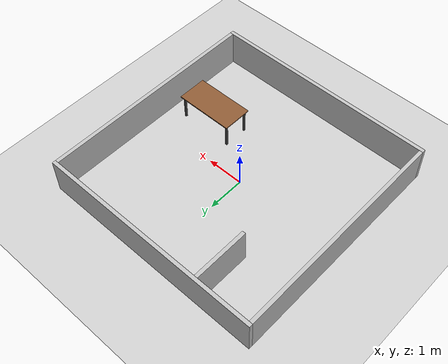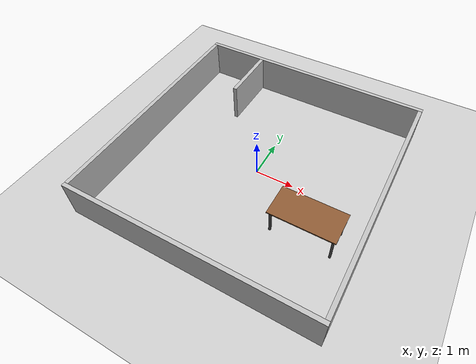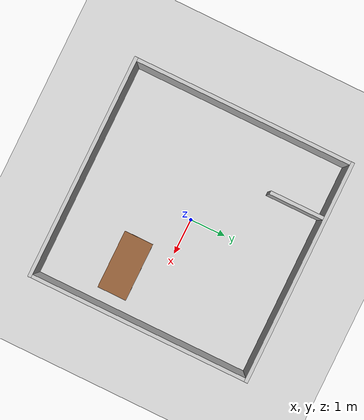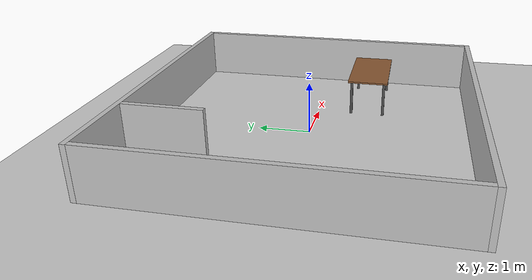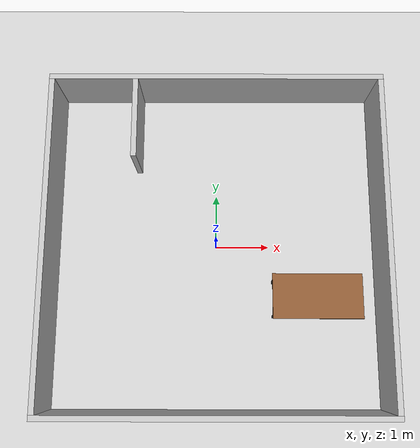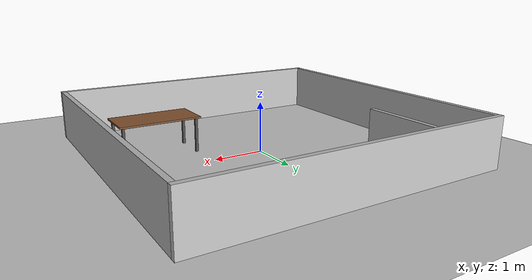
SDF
<sdf version="1.10">
 <world name="robocup_motion">
  <gravity>0 0 -9.81</gravity>
  <physics name="physics" type="ignored">
   <max_step_size>0.001</max_step_size>
   <real_time_factor>1</real_time_factor>
  </physics>
  <plugin filename="gz-sim-physics-system" name="gz::sim::systems::Physics"/>
  <plugin filename="gz-sim-user-commands-system" name="gz::sim::systems::UserCommands"/>
  <plugin filename="gz-sim-scene-broadcaster-system" name="gz::sim::systems::SceneBroadcaster"/>
  <plugin filename="gz-sim-sensors-system" name="gz::sim::systems::Sensors">
   <render_engine>ogre2</render_engine>
  </plugin>
  <model name="ground">
   <static>true</static>
   <link name="ground">
    <collision name="ground_collision">
     <geometry><plane><normal>0 0 1</normal><size>100 100</size></plane></geometry>
    </collision>
    <visual name="ground_visual">
     <geometry><plane><normal>0 0 1</normal><size>100 100</size></plane></geometry>
    </visual>
   </link>
  </model>
  <model name="wall_north">
   <static>true</static>
   <pose>0 3.05 0.5 0 0 0</pose>
   <link name="link">
    <visual name="visual">
     <geometry><box><size>6.2 0.1 1.0</size></box></geometry>
     <material><ambient>0.75 0.75 0.75 1</ambient><diffuse>0.75 0.75 0.75 1</diffuse></material>
    </visual>
    <collision name="collision"><geometry><box><size>6.2 0.1 1.0</size></box></geometry></collision>
   </link>
  </model>
  <model name="wall_south">
   <static>true</static>
   <pose>0 -3.05 0.5 0 0 0</pose>
   <link name="link">
    <visual name="visual">
     <geometry><box><size>6.2 0.1 1.0</size></box></geometry>
     <material><ambient>0.75 0.75 0.75 1</ambient><diffuse>0.75 0.75 0.75 1</diffuse></material>
    </visual>
    <collision name="collision"><geometry><box><size>6.2 0.1 1.0</size></box></geometry></collision>
   </link>
  </model>
  <model name="wall_east">
   <static>true</static>
   <pose>3.05 0 0.5 0 0 0</pose>
   <link name="link">
    <visual name="visual">
     <geometry><box><size>0.1 6.0 1.0</size></box></geometry>
     <material><ambient>0.75 0.75 0.75 1</ambient><diffuse>0.75 0.75 0.75 1</diffuse></material>
    </visual>
    <collision name="collision"><geometry><box><size>0.1 6.0 1.0</size></box></geometry></collision>
   </link>
  </model>
  <model name="wall_west">
   <static>true</static>
   <pose>-3.05 0 0.5 0 0 0</pose>
   <link name="link">
    <visual name="visual">
     <geometry><box><size>0.1 6.0 1.0</size></box></geometry>
     <material><ambient>0.75 0.75 0.75 1</ambient><diffuse>0.75 0.75 0.75 1</diffuse></material>
    </visual>
    <collision name="collision"><geometry><box><size>0.1 6.0 1.0</size></box></geometry></collision>
   </link>
  </model>
  <model name="wall_partition">
   <static>true</static>
   <pose>-1.5 2.25 0.5 0 0 0</pose>
   <link name="link">
    <visual name="visual">
     <geometry><box><size>0.1 1.5 1.0</size></box></geometry>
     <material><ambient>0.75 0.75 0.75 1</ambient><diffuse>0.75 0.75 0.75 1</diffuse></material>
    </visual>
    <collision name="collision"><geometry><box><size>0.1 1.5 1.0</size></box></geometry></collision>
   </link>
  </model>
  <model name="table_top">
   <static>true</static>
   <pose>1.8 -1.0 0.705 0 0 0</pose>
   <link name="link">
    <visual name="visual">
     <geometry><box><size>1.6 0.8 0.03</size></box></geometry>
     <material><ambient>0.55 0.35 0.2 1</ambient><diffuse>0.55 0.35 0.2 1</diffuse></material>
    </visual>
    <collision name="collision"><geometry><box><size>1.6 0.8 0.03</size></box></geometry></collision>
   </link>
  </model>
  <model name="table_leg0">
   <static>true</static>
   <pose>2.525 -0.675 0.345 0 0 0</pose>
   <link name="link">
    <visual name="visual">
     <geometry><box><size>0.05 0.05 0.69</size></box></geometry>
     <material><ambient>0.3 0.3 0.3 1</ambient><diffuse>0.3 0.3 0.3 1</diffuse></material>
    </visual>
    <collision name="collision"><geometry><box><size>0.05 0.05 0.69</size></box></geometry></collision>
   </link>
  </model>
  <model name="table_leg1">
   <static>true</static>
   <pose>2.525 -1.325 0.345 0 0 0</pose>
   <link name="link">
    <visual name="visual">
     <geometry><box><size>0.05 0.05 0.69</size></box></geometry>
     <material><ambient>0.3 0.3 0.3 1</ambient><diffuse>0.3 0.3 0.3 1</diffuse></material>
    </visual>
    <collision name="collision"><geometry><box><size>0.05 0.05 0.69</size></box></geometry></collision>
   </link>
  </model>
  <model name="table_leg2">
   <static>true</static>
   <pose>1.0750000000000002 -0.675 0.345 0 0 0</pose>
   <link name="link">
    <visual name="visual">
     <geometry><box><size>0.05 0.05 0.69</size></box></geometry>
     <material><ambient>0.3 0.3 0.3 1</ambient><diffuse>0.3 0.3 0.3 1</diffuse></material>
    </visual>
    <collision name="collision"><geometry><box><size>0.05 0.05 0.69</size></box></geometry></collision>
   </link>
  </model>
  <model name="table_leg3">
   <static>true</static>
   <pose>1.0750000000000002 -1.325 0.345 0 0 0</pose>
   <link name="link">
    <visual name="visual">
     <geometry><box><size>0.05 0.05 0.69</size></box></geometry>
     <material><ambient>0.3 0.3 0.3 1</ambient><diffuse>0.3 0.3 0.3 1</diffuse></material>
    </visual>
    <collision name="collision"><geometry><box><size>0.05 0.05 0.69</size></box></geometry></collision>
   </link>
  </model>
  <light name="sun" type="directional">
   <pose>0 0 5 0 0 0</pose>
   <direction>-0.5 -0.5 -1</direction>
   <diffuse>0.8 0.8 0.8 1</diffuse>
  </light>
  <scene><ambient>0.6 0.6 0.6 1</ambient></scene>
 </world>
</sdf>
